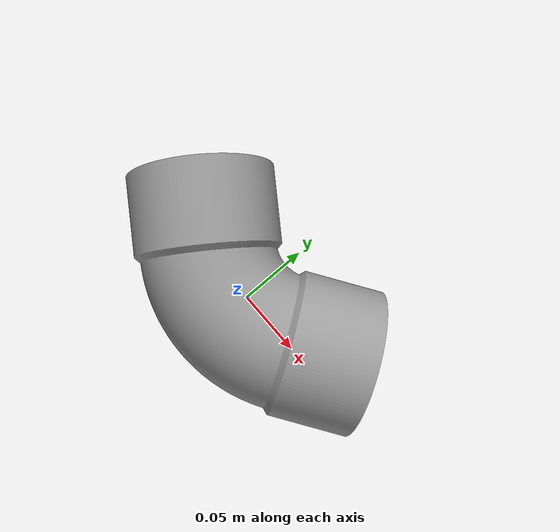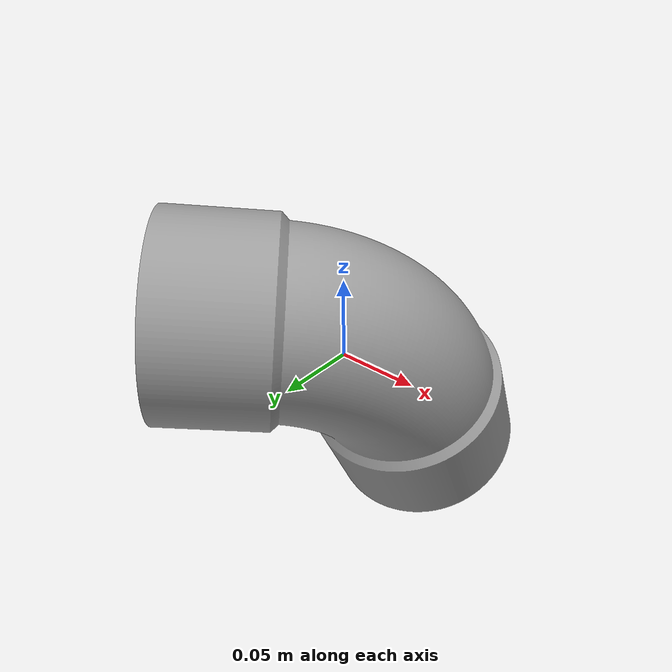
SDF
<?xml version='1.0'?>
<sdf version="1.5">
  <model name="coude">
    <frame name="coude">
      <pose>0 0 0 0 0 0</pose>
    </frame>
    <link name="link">
      <inertial>
        <pose frame="coude">0 0 0 0 0 0</pose>
        <mass>0.4</mass>
        <inertia>
          <ixx>0.00103239</ixx>
          <ixy>0.0</ixy>
          <ixz>0.0</ixz>
          <iyy>0.00186327</iyy>
          <iyz>0.0</iyz>
          <izz>0.00187957</izz>
        </inertia>
      </inertial>
      <collision name="collision">
        <pose frame="coude">-0.003996 -0.01787591 -0.00133297 0.00027054006212198913 -0.00873299329306388 -0.05011673865631564</pose> <!-- vraie valeur -->
        <geometry>
        <mesh>
          <uri>model://coude/coude100_rototrans_singleface_simplified.stl</uri>
          <scale>0.001 0.001 0.001</scale>
        </mesh>
        </geometry>
        <surface>
          <friction>
            <ode>
              <mu>100</mu>
              <mu2>100</mu2>
            </ode>
          </friction>
          <contact>
            <ode>
              <min_depth>0.003</min_depth>
              <max_vel>0</max_vel>
            </ode>
            <collide_bitmask>0x0011</collide_bitmask>
          </contact>
        </surface>
      </collision>
      <visual name="visual">
        <pose frame="coude">-0.003996 -0.01787591 -0.00133297 0.00027054006212198913 -0.00873299329306388 -0.05011673865631564</pose> <!-- vraie valeur -->
        <geometry>
        <mesh>
          <uri>model://coude/coude100_rototrans_singleface.stl</uri>
          <scale>0.001 0.001 0.001</scale>
        </mesh>
        </geometry>
        <material>
            <script>
            <uri>file://media/materials/scripts/gazebo.material</uri>
            <name>Gazebo/Grey</name>
            </script>
        </material>
      </visual>
      <sensor name='contact_sensor' type='contact'>
        <plugin name="gazebo_ros_contact" filename="libgazebo_ros_bumper.so">
          <alwaysOn>true</alwaysOn>
          <updateRate>50</updateRate>
          <bumperTopicName>contact</bumperTopicName>
          <frameName>coude</frameName>
        </plugin>
        <contact>
          <collision>collision</collision>
        </contact>
      </sensor>
    </link>
  </model>
</sdf>
